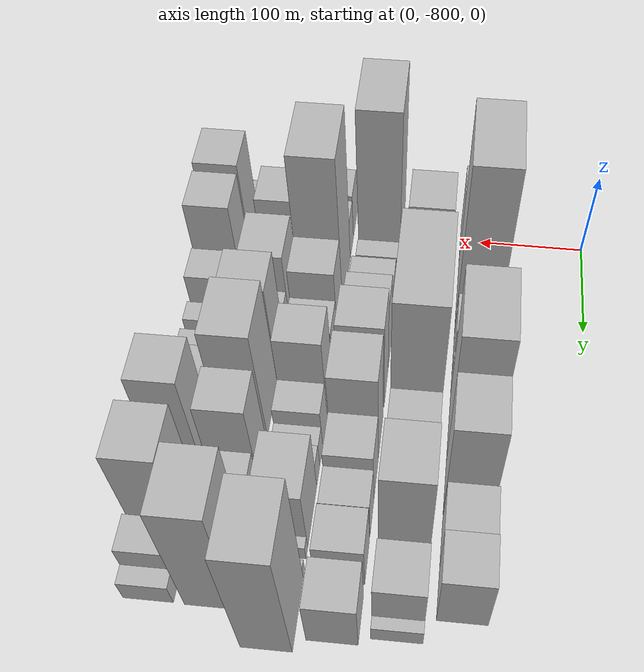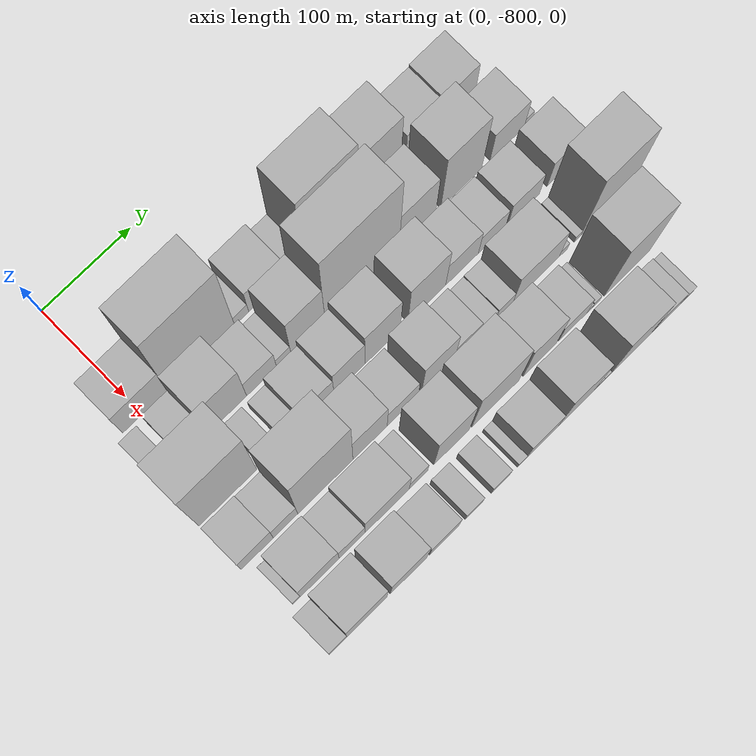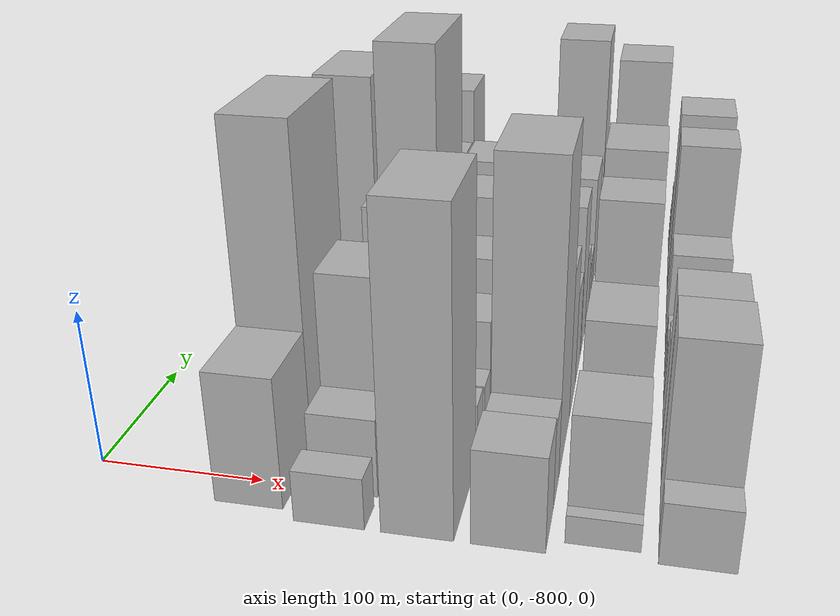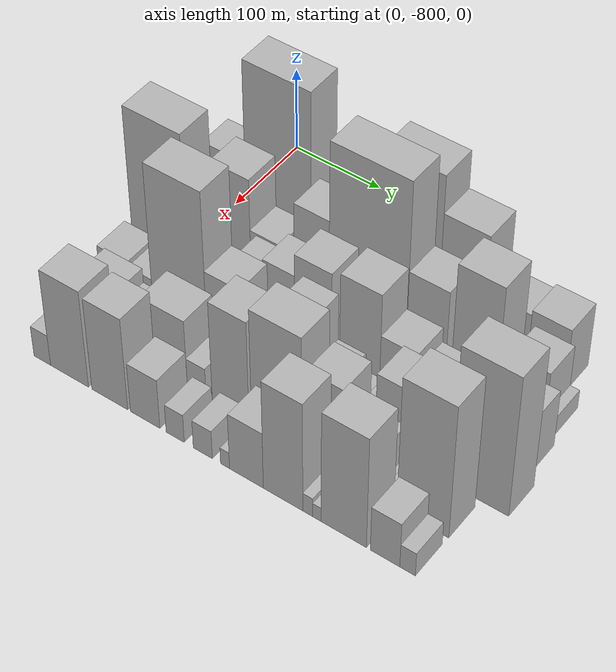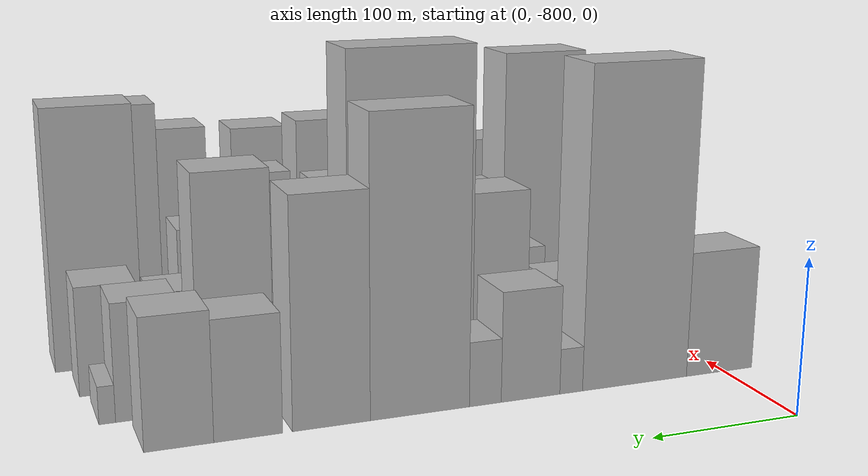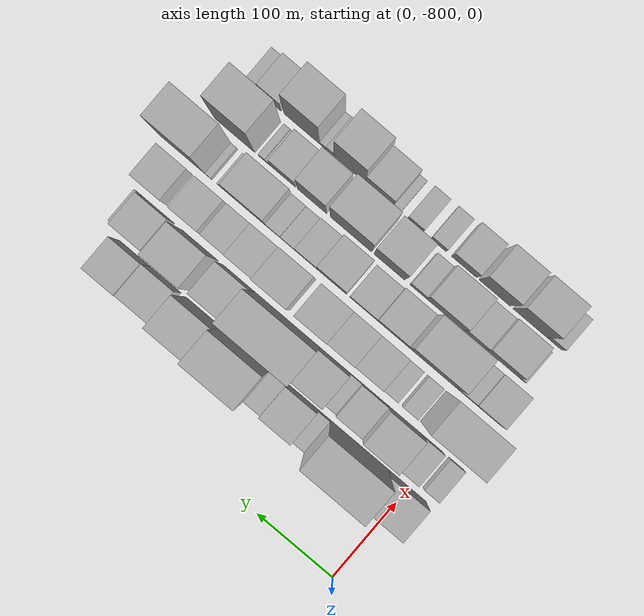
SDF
<sdf version="1.6">
 <world name="default">
  <model name="building_1">
   <static>1</static>
   <pose>100.0000 -796.8859 0 0.000000 0.000000 0.000000</pose>
   <link name="link">
    <pose>0 0 42.00 0 0 0</pose>
    <collision name="collision"><geometry><box><size>40.0000 50.2283 84.0000</size></box></geometry></collision>
    <visual name="visual">
     <cast_shadows>0</cast_shadows>
     <geometry><box><size>40.0000 50.2283 84.0000</size></box></geometry>
     <material>
      <script>
       <uri>model://HANNAS_wall/materials/scripts</uri>
       <uri>model://HANNAS_wall/materials/textures</uri>
       <name>vrc/HANNAS_wall</name>
      </script>
     </material>
    </visual>
   </link>
  </model>
  <model name="building_2">
   <static>1</static>
   <pose>100.0000 -733.5840 0 0.000000 0.000000 0.000000</pose>
   <link name="link">
    <pose>0 0 105.00 0 0 0</pose>
    <collision name="collision"><geometry><box><size>40.0000 76.3755 210.0000</size></box></geometry></collision>
    <visual name="visual">
     <cast_shadows>0</cast_shadows>
     <geometry><box><size>40.0000 76.3755 210.0000</size></box></geometry>
     <material>
      <script>
       <uri>model://HANNAS_wall/materials/scripts</uri>
       <uri>model://HANNAS_wall/materials/textures</uri>
       <name>vrc/HANNAS_wall</name>
      </script>
     </material>
    </visual>
   </link>
  </model>
  <model name="building_3">
   <static>1</static>
   <pose>100.0000 -687.3342 0 0.000000 0.000000 0.000000</pose>
   <link name="link">
    <pose>0 0 15.00 0 0 0</pose>
    <collision name="collision"><geometry><box><size>40.0000 16.1241 30.0000</size></box></geometry></collision>
    <visual name="visual">
     <cast_shadows>0</cast_shadows>
     <geometry><box><size>40.0000 16.1241 30.0000</size></box></geometry>
     <material>
      <script>
       <uri>model://HANNAS_wall/materials/scripts</uri>
       <uri>model://HANNAS_wall/materials/textures</uri>
       <name>vrc/HANNAS_wall</name>
      </script>
     </material>
    </visual>
   </link>
  </model>
  <model name="building_4">
   <static>1</static>
   <pose>100.0000 -658.9254 0 0.000000 0.000000 0.000000</pose>
   <link name="link">
    <pose>0 0 36.00 0 0 0</pose>
    <collision name="collision"><geometry><box><size>40.0000 40.6934 72.0000</size></box></geometry></collision>
    <visual name="visual">
     <cast_shadows>0</cast_shadows>
     <geometry><box><size>40.0000 40.6934 72.0000</size></box></geometry>
     <material>
      <script>
       <uri>model://HANNAS_wall/materials/scripts</uri>
       <uri>model://HANNAS_wall/materials/textures</uri>
       <name>vrc/HANNAS_wall</name>
      </script>
     </material>
    </visual>
   </link>
  </model>
  <model name="building_5">
   <static>1</static>
   <pose>100.0000 -627.7885 0 0.000000 0.000000 0.000000</pose>
   <link name="link">
    <pose>0 0 21.00 0 0 0</pose>
    <collision name="collision"><geometry><box><size>40.0000 21.5804 42.0000</size></box></geometry></collision>
    <visual name="visual">
     <cast_shadows>0</cast_shadows>
     <geometry><box><size>40.0000 21.5804 42.0000</size></box></geometry>
     <material>
      <script>
       <uri>model://HANNAS_wall/materials/scripts</uri>
       <uri>model://HANNAS_wall/materials/textures</uri>
       <name>vrc/HANNAS_wall</name>
      </script>
     </material>
    </visual>
   </link>
  </model>
  <model name="building_6">
   <static>1</static>
   <pose>100.0000 -584.6158 0 0.000000 0.000000 0.000000</pose>
   <link name="link">
    <pose>0 0 94.50 0 0 0</pose>
    <collision name="collision"><geometry><box><size>40.0000 64.7650 189.0000</size></box></geometry></collision>
    <visual name="visual">
     <cast_shadows>0</cast_shadows>
     <geometry><box><size>40.0000 64.7650 189.0000</size></box></geometry>
     <material>
      <script>
       <uri>model://HANNAS_wall/materials/scripts</uri>
       <uri>model://HANNAS_wall/materials/textures</uri>
       <name>vrc/HANNAS_wall</name>
      </script>
     </material>
    </visual>
   </link>
  </model>
  <model name="building_7">
   <static>1</static>
   <pose>100.0000 -527.9180 0 0.000000 0.000000 0.000000</pose>
   <link name="link">
    <pose>0 0 72.00 0 0 0</pose>
    <collision name="collision"><geometry><box><size>40.0000 48.6304 144.0000</size></box></geometry></collision>
    <visual name="visual">
     <cast_shadows>0</cast_shadows>
     <geometry><box><size>40.0000 48.6304 144.0000</size></box></geometry>
     <material>
      <script>
       <uri>model://HANNAS_wall/materials/scripts</uri>
       <uri>model://HANNAS_wall/materials/textures</uri>
       <name>vrc/HANNAS_wall</name>
      </script>
     </material>
    </visual>
   </link>
  </model>
  <model name="building_8">
   <static>1</static>
   <pose>100.0000 -476.9769 0 0.000000 0.000000 0.000000</pose>
   <link name="link">
    <pose>0 0 37.50 0 0 0</pose>
    <collision name="collision"><geometry><box><size>40.0000 41.2519 75.0000</size></box></geometry></collision>
    <visual name="visual">
     <cast_shadows>0</cast_shadows>
     <geometry><box><size>40.0000 41.2519 75.0000</size></box></geometry>
     <material>
      <script>
       <uri>model://HANNAS_wall/materials/scripts</uri>
       <uri>model://HANNAS_wall/materials/textures</uri>
       <name>vrc/HANNAS_wall</name>
      </script>
     </material>
    </visual>
   </link>
  </model>
  <model name="building_9">
   <static>1</static>
   <pose>100.0000 -436.0527 0 0.000000 0.000000 0.000000</pose>
   <link name="link">
    <pose>0 0 40.50 0 0 0</pose>
    <collision name="collision"><geometry><box><size>40.0000 40.5966 81.0000</size></box></geometry></collision>
    <visual name="visual">
     <cast_shadows>0</cast_shadows>
     <geometry><box><size>40.0000 40.5966 81.0000</size></box></geometry>
     <material>
      <script>
       <uri>model://HANNAS_wall/materials/scripts</uri>
       <uri>model://HANNAS_wall/materials/textures</uri>
       <name>vrc/HANNAS_wall</name>
      </script>
     </material>
    </visual>
   </link>
  </model>
  <model name="building_44">
   <static>1</static>
   <pose>149.0000 -820.1243 0 0.000000 0.000000 0.000000</pose>
   <link name="link">
    <pose>0 0 16.50 0 0 0</pose>
    <collision name="collision"><geometry><box><size>40.0000 19.7513 33.0000</size></box></geometry></collision>
    <visual name="visual">
     <cast_shadows>0</cast_shadows>
     <geometry><box><size>40.0000 19.7513 33.0000</size></box></geometry>
     <material>
      <script>
       <uri>model://HANNAS_wall/materials/scripts</uri>
       <uri>model://HANNAS_wall/materials/textures</uri>
       <name>vrc/HANNAS_wall</name>
      </script>
     </material>
    </visual>
   </link>
  </model>
  <model name="building_45">
   <static>1</static>
   <pose>149.0000 -787.9828 0 0.000000 0.000000 0.000000</pose>
   <link name="link">
    <pose>0 0 25.50 0 0 0</pose>
    <collision name="collision"><geometry><box><size>40.0000 28.5318 51.0000</size></box></geometry></collision>
    <visual name="visual">
     <cast_shadows>0</cast_shadows>
     <geometry><box><size>40.0000 28.5318 51.0000</size></box></geometry>
     <material>
      <script>
       <uri>model://HANNAS_wall/materials/scripts</uri>
       <uri>model://HANNAS_wall/materials/textures</uri>
       <name>vrc/HANNAS_wall</name>
      </script>
     </material>
    </visual>
   </link>
  </model>
  <model name="building_46">
   <static>1</static>
   <pose>149.0000 -751.4197 0 0.000000 0.000000 0.000000</pose>
   <link name="link">
    <pose>0 0 61.50 0 0 0</pose>
    <collision name="collision"><geometry><box><size>40.0000 44.5943 123.0000</size></box></geometry></collision>
    <visual name="visual">
     <cast_shadows>0</cast_shadows>
     <geometry><box><size>40.0000 44.5943 123.0000</size></box></geometry>
     <material>
      <script>
       <uri>model://HANNAS_wall/materials/scripts</uri>
       <uri>model://HANNAS_wall/materials/textures</uri>
       <name>vrc/HANNAS_wall</name>
      </script>
     </material>
    </visual>
   </link>
  </model>
  <model name="building_47">
   <static>1</static>
   <pose>149.0000 -712.1330 0 0.000000 0.000000 0.000000</pose>
   <link name="link">
    <pose>0 0 30.00 0 0 0</pose>
    <collision name="collision"><geometry><box><size>40.0000 33.9791 60.0000</size></box></geometry></collision>
    <visual name="visual">
     <cast_shadows>0</cast_shadows>
     <geometry><box><size>40.0000 33.9791 60.0000</size></box></geometry>
     <material>
      <script>
       <uri>model://HANNAS_wall/materials/scripts</uri>
       <uri>model://HANNAS_wall/materials/textures</uri>
       <name>vrc/HANNAS_wall</name>
      </script>
     </material>
    </visual>
   </link>
  </model>
  <model name="building_48">
   <static>1</static>
   <pose>149.0000 -686.9816 0 0.000000 0.000000 0.000000</pose>
   <link name="link">
    <pose>0 0 15.00 0 0 0</pose>
    <collision name="collision"><geometry><box><size>40.0000 16.3236 30.0000</size></box></geometry></collision>
    <visual name="visual">
     <cast_shadows>0</cast_shadows>
     <geometry><box><size>40.0000 16.3236 30.0000</size></box></geometry>
     <material>
      <script>
       <uri>model://HANNAS_wall/materials/scripts</uri>
       <uri>model://HANNAS_wall/materials/textures</uri>
       <name>vrc/HANNAS_wall</name>
      </script>
     </material>
    </visual>
   </link>
  </model>
  <model name="building_49">
   <static>1</static>
   <pose>149.0000 -659.2333 0 0.000000 0.000000 0.000000</pose>
   <link name="link">
    <pose>0 0 61.50 0 0 0</pose>
    <collision name="collision"><geometry><box><size>40.0000 39.1730 123.0000</size></box></geometry></collision>
    <visual name="visual">
     <cast_shadows>0</cast_shadows>
     <geometry><box><size>40.0000 39.1730 123.0000</size></box></geometry>
     <material>
      <script>
       <uri>model://HANNAS_wall/materials/scripts</uri>
       <uri>model://HANNAS_wall/materials/textures</uri>
       <name>vrc/HANNAS_wall</name>
      </script>
     </material>
    </visual>
   </link>
  </model>
  <model name="building_50">
   <static>1</static>
   <pose>149.0000 -596.8419 0 0.000000 0.000000 0.000000</pose>
   <link name="link">
    <pose>0 0 109.50 0 0 0</pose>
    <collision name="collision"><geometry><box><size>40.0000 85.6097 219.0000</size></box></geometry></collision>
    <visual name="visual">
     <cast_shadows>0</cast_shadows>
     <geometry><box><size>40.0000 85.6097 219.0000</size></box></geometry>
     <material>
      <script>
       <uri>model://HANNAS_wall/materials/scripts</uri>
       <uri>model://HANNAS_wall/materials/textures</uri>
       <name>vrc/HANNAS_wall</name>
      </script>
     </material>
    </visual>
   </link>
  </model>
  <model name="building_51">
   <static>1</static>
   <pose>149.0000 -532.7082 0 0.000000 0.000000 0.000000</pose>
   <link name="link">
    <pose>0 0 55.50 0 0 0</pose>
    <collision name="collision"><geometry><box><size>40.0000 42.6578 111.0000</size></box></geometry></collision>
    <visual name="visual">
     <cast_shadows>0</cast_shadows>
     <geometry><box><size>40.0000 42.6578 111.0000</size></box></geometry>
     <material>
      <script>
       <uri>model://HANNAS_wall/materials/scripts</uri>
       <uri>model://HANNAS_wall/materials/textures</uri>
       <name>vrc/HANNAS_wall</name>
      </script>
     </material>
    </visual>
   </link>
  </model>
  <model name="building_52">
   <static>1</static>
   <pose>149.0000 -481.3492 0 0.000000 0.000000 0.000000</pose>
   <link name="link">
    <pose>0 0 75.00 0 0 0</pose>
    <collision name="collision"><geometry><box><size>40.0000 48.0601 150.0000</size></box></geometry></collision>
    <visual name="visual">
     <cast_shadows>0</cast_shadows>
     <geometry><box><size>40.0000 48.0601 150.0000</size></box></geometry>
     <material>
      <script>
       <uri>model://HANNAS_wall/materials/scripts</uri>
       <uri>model://HANNAS_wall/materials/textures</uri>
       <name>vrc/HANNAS_wall</name>
      </script>
     </material>
    </visual>
   </link>
  </model>
  <model name="building_53">
   <static>1</static>
   <pose>149.0000 -427.0822 0 0.000000 0.000000 0.000000</pose>
   <link name="link">
    <pose>0 0 37.50 0 0 0</pose>
    <collision name="collision"><geometry><box><size>40.0000 40.4738 75.0000</size></box></geometry></collision>
    <visual name="visual">
     <cast_shadows>0</cast_shadows>
     <geometry><box><size>40.0000 40.4738 75.0000</size></box></geometry>
     <material>
      <script>
       <uri>model://HANNAS_wall/materials/scripts</uri>
       <uri>model://HANNAS_wall/materials/textures</uri>
       <name>vrc/HANNAS_wall</name>
      </script>
     </material>
    </visual>
   </link>
  </model>
  <model name="building_54">
   <static>1</static>
   <pose>149.0000 -401.8744 0 0.000000 0.000000 0.000000</pose>
   <link name="link">
    <pose>0 0 12.00 0 0 0</pose>
    <collision name="collision"><geometry><box><size>40.0000 9.9417 24.0000</size></box></geometry></collision>
    <visual name="visual">
     <cast_shadows>0</cast_shadows>
     <geometry><box><size>40.0000 9.9417 24.0000</size></box></geometry>
     <material>
      <script>
       <uri>model://HANNAS_wall/materials/scripts</uri>
       <uri>model://HANNAS_wall/materials/textures</uri>
       <name>vrc/HANNAS_wall</name>
      </script>
     </material>
    </visual>
   </link>
  </model>
  <model name="building_88">
   <static>1</static>
   <pose>198.0000 -797.5485 0 0.000000 0.000000 0.000000</pose>
   <link name="link">
    <pose>0 0 97.50 0 0 0</pose>
    <collision name="collision"><geometry><box><size>40.0000 64.9030 195.0000</size></box></geometry></collision>
    <visual name="visual">
     <cast_shadows>0</cast_shadows>
     <geometry><box><size>40.0000 64.9030 195.0000</size></box></geometry>
     <material>
      <script>
       <uri>model://HANNAS_wall/materials/scripts</uri>
       <uri>model://HANNAS_wall/materials/textures</uri>
       <name>vrc/HANNAS_wall</name>
      </script>
     </material>
    </visual>
   </link>
  </model>
  <model name="building_89">
   <static>1</static>
   <pose>198.0000 -750.2233 0 0.000000 0.000000 0.000000</pose>
   <link name="link">
    <pose>0 0 19.50 0 0 0</pose>
    <collision name="collision"><geometry><box><size>40.0000 19.7476 39.0000</size></box></geometry></collision>
    <visual name="visual">
     <cast_shadows>0</cast_shadows>
     <geometry><box><size>40.0000 19.7476 39.0000</size></box></geometry>
     <material>
      <script>
       <uri>model://HANNAS_wall/materials/scripts</uri>
       <uri>model://HANNAS_wall/materials/textures</uri>
       <name>vrc/HANNAS_wall</name>
      </script>
     </material>
    </visual>
   </link>
  </model>
  <model name="building_90">
   <static>1</static>
   <pose>198.0000 -724.4360 0 0.000000 0.000000 0.000000</pose>
   <link name="link">
    <pose>0 0 18.00 0 0 0</pose>
    <collision name="collision"><geometry><box><size>40.0000 19.8270 36.0000</size></box></geometry></collision>
    <visual name="visual">
     <cast_shadows>0</cast_shadows>
     <geometry><box><size>40.0000 19.8270 36.0000</size></box></geometry>
     <material>
      <script>
       <uri>model://HANNAS_wall/materials/scripts</uri>
       <uri>model://HANNAS_wall/materials/textures</uri>
       <name>vrc/HANNAS_wall</name>
      </script>
     </material>
    </visual>
   </link>
  </model>
  <model name="building_91">
   <static>1</static>
   <pose>198.0000 -696.0371 0 0.000000 0.000000 0.000000</pose>
   <link name="link">
    <pose>0 0 34.50 0 0 0</pose>
    <collision name="collision"><geometry><box><size>40.0000 36.9707 69.0000</size></box></geometry></collision>
    <visual name="visual">
     <cast_shadows>0</cast_shadows>
     <geometry><box><size>40.0000 36.9707 69.0000</size></box></geometry>
     <material>
      <script>
       <uri>model://HANNAS_wall/materials/scripts</uri>
       <uri>model://HANNAS_wall/materials/textures</uri>
       <name>vrc/HANNAS_wall</name>
      </script>
     </material>
    </visual>
   </link>
  </model>
  <model name="building_92">
   <static>1</static>
   <pose>198.0000 -659.9001 0 0.000000 0.000000 0.000000</pose>
   <link name="link">
    <pose>0 0 46.50 0 0 0</pose>
    <collision name="collision"><geometry><box><size>40.0000 35.3034 93.0000</size></box></geometry></collision>
    <visual name="visual">
     <cast_shadows>0</cast_shadows>
     <geometry><box><size>40.0000 35.3034 93.0000</size></box></geometry>
     <material>
      <script>
       <uri>model://HANNAS_wall/materials/scripts</uri>
       <uri>model://HANNAS_wall/materials/textures</uri>
       <name>vrc/HANNAS_wall</name>
      </script>
     </material>
    </visual>
   </link>
  </model>
  <model name="building_93">
   <static>1</static>
   <pose>198.0000 -621.8851 0 0.000000 0.000000 0.000000</pose>
   <link name="link">
    <pose>0 0 60.00 0 0 0</pose>
    <collision name="collision"><geometry><box><size>40.0000 40.7267 120.0000</size></box></geometry></collision>
    <visual name="visual">
     <cast_shadows>0</cast_shadows>
     <geometry><box><size>40.0000 40.7267 120.0000</size></box></geometry>
     <material>
      <script>
       <uri>model://HANNAS_wall/materials/scripts</uri>
       <uri>model://HANNAS_wall/materials/textures</uri>
       <name>vrc/HANNAS_wall</name>
      </script>
     </material>
    </visual>
   </link>
  </model>
  <model name="building_94">
   <static>1</static>
   <pose>198.0000 -570.7113 0 0.000000 0.000000 0.000000</pose>
   <link name="link">
    <pose>0 0 63.00 0 0 0</pose>
    <collision name="collision"><geometry><box><size>40.0000 43.6209 126.0000</size></box></geometry></collision>
    <visual name="visual">
     <cast_shadows>0</cast_shadows>
     <geometry><box><size>40.0000 43.6209 126.0000</size></box></geometry>
     <material>
      <script>
       <uri>model://HANNAS_wall/materials/scripts</uri>
       <uri>model://HANNAS_wall/materials/textures</uri>
       <name>vrc/HANNAS_wall</name>
      </script>
     </material>
    </visual>
   </link>
  </model>
  <model name="building_95">
   <static>1</static>
   <pose>198.0000 -529.7526 0 0.000000 0.000000 0.000000</pose>
   <link name="link">
    <pose>0 0 37.50 0 0 0</pose>
    <collision name="collision"><geometry><box><size>40.0000 38.2964 75.0000</size></box></geometry></collision>
    <visual name="visual">
     <cast_shadows>0</cast_shadows>
     <geometry><box><size>40.0000 38.2964 75.0000</size></box></geometry>
     <material>
      <script>
       <uri>model://HANNAS_wall/materials/scripts</uri>
       <uri>model://HANNAS_wall/materials/textures</uri>
       <name>vrc/HANNAS_wall</name>
      </script>
     </material>
    </visual>
   </link>
  </model>
  <model name="building_96">
   <static>1</static>
   <pose>198.0000 -494.6274 0 0.000000 0.000000 0.000000</pose>
   <link name="link">
    <pose>0 0 28.50 0 0 0</pose>
    <collision name="collision"><geometry><box><size>40.0000 31.9541 57.0000</size></box></geometry></collision>
    <visual name="visual">
     <cast_shadows>0</cast_shadows>
     <geometry><box><size>40.0000 31.9541 57.0000</size></box></geometry>
     <material>
      <script>
       <uri>model://HANNAS_wall/materials/scripts</uri>
       <uri>model://HANNAS_wall/materials/textures</uri>
       <name>vrc/HANNAS_wall</name>
      </script>
     </material>
    </visual>
   </link>
  </model>
  <model name="building_97">
   <static>1</static>
   <pose>198.0000 -457.1479 0 0.000000 0.000000 0.000000</pose>
   <link name="link">
    <pose>0 0 31.50 0 0 0</pose>
    <collision name="collision"><geometry><box><size>40.0000 37.0048 63.0000</size></box></geometry></collision>
    <visual name="visual">
     <cast_shadows>0</cast_shadows>
     <geometry><box><size>40.0000 37.0048 63.0000</size></box></geometry>
     <material>
      <script>
       <uri>model://HANNAS_wall/materials/scripts</uri>
       <uri>model://HANNAS_wall/materials/textures</uri>
       <name>vrc/HANNAS_wall</name>
      </script>
     </material>
    </visual>
   </link>
  </model>
  <model name="building_98">
   <static>1</static>
   <pose>198.0000 -410.3999 0 0.000000 0.000000 0.000000</pose>
   <link name="link">
    <pose>0 0 36.00 0 0 0</pose>
    <collision name="collision"><geometry><box><size>40.0000 38.4912 72.0000</size></box></geometry></collision>
    <visual name="visual">
     <cast_shadows>0</cast_shadows>
     <geometry><box><size>40.0000 38.4912 72.0000</size></box></geometry>
     <material>
      <script>
       <uri>model://HANNAS_wall/materials/scripts</uri>
       <uri>model://HANNAS_wall/materials/textures</uri>
       <name>vrc/HANNAS_wall</name>
      </script>
     </material>
    </visual>
   </link>
  </model>
  <model name="building_132">
   <static>1</static>
   <pose>247.0000 -812.0141 0 0.000000 0.000000 0.000000</pose>
   <link name="link">
    <pose>0 0 30.00 0 0 0</pose>
    <collision name="collision"><geometry><box><size>40.0000 35.9718 60.0000</size></box></geometry></collision>
    <visual name="visual">
     <cast_shadows>0</cast_shadows>
     <geometry><box><size>40.0000 35.9718 60.0000</size></box></geometry>
     <material>
      <script>
       <uri>model://HANNAS_wall/materials/scripts</uri>
       <uri>model://HANNAS_wall/materials/textures</uri>
       <name>vrc/HANNAS_wall</name>
      </script>
     </material>
    </visual>
   </link>
  </model>
  <model name="building_133">
   <static>1</static>
   <pose>247.0000 -780.3311 0 0.000000 0.000000 0.000000</pose>
   <link name="link">
    <pose>0 0 27.00 0 0 0</pose>
    <collision name="collision"><geometry><box><size>40.0000 27.3943 54.0000</size></box></geometry></collision>
    <visual name="visual">
     <cast_shadows>0</cast_shadows>
     <geometry><box><size>40.0000 27.3943 54.0000</size></box></geometry>
     <material>
      <script>
       <uri>model://HANNAS_wall/materials/scripts</uri>
       <uri>model://HANNAS_wall/materials/textures</uri>
       <name>vrc/HANNAS_wall</name>
      </script>
     </material>
    </visual>
   </link>
  </model>
  <model name="building_134">
   <static>1</static>
   <pose>247.0000 -735.4342 0 0.000000 0.000000 0.000000</pose>
   <link name="link">
    <pose>0 0 99.00 0 0 0</pose>
    <collision name="collision"><geometry><box><size>40.0000 62.3995 198.0000</size></box></geometry></collision>
    <visual name="visual">
     <cast_shadows>0</cast_shadows>
     <geometry><box><size>40.0000 62.3995 198.0000</size></box></geometry>
     <material>
      <script>
       <uri>model://HANNAS_wall/materials/scripts</uri>
       <uri>model://HANNAS_wall/materials/textures</uri>
       <name>vrc/HANNAS_wall</name>
      </script>
     </material>
    </visual>
   </link>
  </model>
  <model name="building_135">
   <static>1</static>
   <pose>247.0000 -684.7155 0 0.000000 0.000000 0.000000</pose>
   <link name="link">
    <pose>0 0 51.00 0 0 0</pose>
    <collision name="collision"><geometry><box><size>40.0000 39.0378 102.0000</size></box></geometry></collision>
    <visual name="visual">
     <cast_shadows>0</cast_shadows>
     <geometry><box><size>40.0000 39.0378 102.0000</size></box></geometry>
     <material>
      <script>
       <uri>model://HANNAS_wall/materials/scripts</uri>
       <uri>model://HANNAS_wall/materials/textures</uri>
       <name>vrc/HANNAS_wall</name>
      </script>
     </material>
    </visual>
   </link>
  </model>
  <model name="building_136">
   <static>1</static>
   <pose>247.0000 -647.4212 0 0.000000 0.000000 0.000000</pose>
   <link name="link">
    <pose>0 0 33.00 0 0 0</pose>
    <collision name="collision"><geometry><box><size>40.0000 35.5508 66.0000</size></box></geometry></collision>
    <visual name="visual">
     <cast_shadows>0</cast_shadows>
     <geometry><box><size>40.0000 35.5508 66.0000</size></box></geometry>
     <material>
      <script>
       <uri>model://HANNAS_wall/materials/scripts</uri>
       <uri>model://HANNAS_wall/materials/textures</uri>
       <name>vrc/HANNAS_wall</name>
      </script>
     </material>
    </visual>
   </link>
  </model>
  <model name="building_137">
   <static>1</static>
   <pose>247.0000 -606.7516 0 0.000000 0.000000 0.000000</pose>
   <link name="link">
    <pose>0 0 55.50 0 0 0</pose>
    <collision name="collision"><geometry><box><size>40.0000 37.7882 111.0000</size></box></geometry></collision>
    <visual name="visual">
     <cast_shadows>0</cast_shadows>
     <geometry><box><size>40.0000 37.7882 111.0000</size></box></geometry>
     <material>
      <script>
       <uri>model://HANNAS_wall/materials/scripts</uri>
       <uri>model://HANNAS_wall/materials/textures</uri>
       <name>vrc/HANNAS_wall</name>
      </script>
     </material>
    </visual>
   </link>
  </model>
  <model name="building_138">
   <static>1</static>
   <pose>247.0000 -572.9656 0 0.000000 0.000000 0.000000</pose>
   <link name="link">
    <pose>0 0 27.00 0 0 0</pose>
    <collision name="collision"><geometry><box><size>40.0000 29.7838 54.0000</size></box></geometry></collision>
    <visual name="visual">
     <cast_shadows>0</cast_shadows>
     <geometry><box><size>40.0000 29.7838 54.0000</size></box></geometry>
     <material>
      <script>
       <uri>model://HANNAS_wall/materials/scripts</uri>
       <uri>model://HANNAS_wall/materials/textures</uri>
       <name>vrc/HANNAS_wall</name>
      </script>
     </material>
    </visual>
   </link>
  </model>
  <model name="building_139">
   <static>1</static>
   <pose>247.0000 -548.4549 0 0.000000 0.000000 0.000000</pose>
   <link name="link">
    <pose>0 0 16.50 0 0 0</pose>
    <collision name="collision"><geometry><box><size>40.0000 19.2377 33.0000</size></box></geometry></collision>
    <visual name="visual">
     <cast_shadows>0</cast_shadows>
     <geometry><box><size>40.0000 19.2377 33.0000</size></box></geometry>
     <material>
      <script>
       <uri>model://HANNAS_wall/materials/scripts</uri>
       <uri>model://HANNAS_wall/materials/textures</uri>
       <name>vrc/HANNAS_wall</name>
      </script>
     </material>
    </visual>
   </link>
  </model>
  <model name="building_140">
   <static>1</static>
   <pose>247.0000 -529.0636 0 0.000000 0.000000 0.000000</pose>
   <link name="link">
    <pose>0 0 18.00 0 0 0</pose>
    <collision name="collision"><geometry><box><size>40.0000 19.5449 36.0000</size></box></geometry></collision>
    <visual name="visual">
     <cast_shadows>0</cast_shadows>
     <geometry><box><size>40.0000 19.5449 36.0000</size></box></geometry>
     <material>
      <script>
       <uri>model://HANNAS_wall/materials/scripts</uri>
       <uri>model://HANNAS_wall/materials/textures</uri>
       <name>vrc/HANNAS_wall</name>
      </script>
     </material>
    </visual>
   </link>
  </model>
  <model name="building_141">
   <static>1</static>
   <pose>247.0000 -492.3433 0 0.000000 0.000000 0.000000</pose>
   <link name="link">
    <pose>0 0 45.00 0 0 0</pose>
    <collision name="collision"><geometry><box><size>40.0000 53.8956 90.0000</size></box></geometry></collision>
    <visual name="visual">
     <cast_shadows>0</cast_shadows>
     <geometry><box><size>40.0000 53.8956 90.0000</size></box></geometry>
     <material>
      <script>
       <uri>model://HANNAS_wall/materials/scripts</uri>
       <uri>model://HANNAS_wall/materials/textures</uri>
       <name>vrc/HANNAS_wall</name>
      </script>
     </material>
    </visual>
   </link>
  </model>
  <model name="building_142">
   <static>1</static>
   <pose>247.0000 -460.4018 0 0.000000 0.000000 0.000000</pose>
   <link name="link">
    <pose>0 0 10.50 0 0 0</pose>
    <collision name="collision"><geometry><box><size>40.0000 9.9874 21.0000</size></box></geometry></collision>
    <visual name="visual">
     <cast_shadows>0</cast_shadows>
     <geometry><box><size>40.0000 9.9874 21.0000</size></box></geometry>
     <material>
      <script>
       <uri>model://HANNAS_wall/materials/scripts</uri>
       <uri>model://HANNAS_wall/materials/textures</uri>
       <name>vrc/HANNAS_wall</name>
      </script>
     </material>
    </visual>
   </link>
  </model>
  <model name="building_143">
   <static>1</static>
   <pose>247.0000 -443.4813 0 0.000000 0.000000 0.000000</pose>
   <link name="link">
    <pose>0 0 9.00 0 0 0</pose>
    <collision name="collision"><geometry><box><size>40.0000 7.8536 18.0000</size></box></geometry></collision>
    <visual name="visual">
     <cast_shadows>0</cast_shadows>
     <geometry><box><size>40.0000 7.8536 18.0000</size></box></geometry>
     <material>
      <script>
       <uri>model://HANNAS_wall/materials/scripts</uri>
       <uri>model://HANNAS_wall/materials/textures</uri>
       <name>vrc/HANNAS_wall</name>
      </script>
     </material>
    </visual>
   </link>
  </model>
  <model name="building_144">
   <static>1</static>
   <pose>247.0000 -410.3525 0 0.000000 0.000000 0.000000</pose>
   <link name="link">
    <pose>0 0 88.50 0 0 0</pose>
    <collision name="collision"><geometry><box><size>40.0000 58.4041 177.0000</size></box></geometry></collision>
    <visual name="visual">
     <cast_shadows>0</cast_shadows>
     <geometry><box><size>40.0000 58.4041 177.0000</size></box></geometry>
     <material>
      <script>
       <uri>model://HANNAS_wall/materials/scripts</uri>
       <uri>model://HANNAS_wall/materials/textures</uri>
       <name>vrc/HANNAS_wall</name>
      </script>
     </material>
    </visual>
   </link>
  </model>
  <model name="building_182">
   <static>1</static>
   <pose>296.0000 -815.8309 0 0.000000 0.000000 0.000000</pose>
   <link name="link">
    <pose>0 0 9.00 0 0 0</pose>
    <collision name="collision"><geometry><box><size>40.0000 8.3382 18.0000</size></box></geometry></collision>
    <visual name="visual">
     <cast_shadows>0</cast_shadows>
     <geometry><box><size>40.0000 8.3382 18.0000</size></box></geometry>
     <material>
      <script>
       <uri>model://HANNAS_wall/materials/scripts</uri>
       <uri>model://HANNAS_wall/materials/textures</uri>
       <name>vrc/HANNAS_wall</name>
      </script>
     </material>
    </visual>
   </link>
  </model>
  <model name="building_183">
   <static>1</static>
   <pose>296.0000 -789.8645 0 0.000000 0.000000 0.000000</pose>
   <link name="link">
    <pose>0 0 37.50 0 0 0</pose>
    <collision name="collision"><geometry><box><size>40.0000 43.5946 75.0000</size></box></geometry></collision>
    <visual name="visual">
     <cast_shadows>0</cast_shadows>
     <geometry><box><size>40.0000 43.5946 75.0000</size></box></geometry>
     <material>
      <script>
       <uri>model://HANNAS_wall/materials/scripts</uri>
       <uri>model://HANNAS_wall/materials/textures</uri>
       <name>vrc/HANNAS_wall</name>
      </script>
     </material>
    </visual>
   </link>
  </model>
  <model name="building_184">
   <static>1</static>
   <pose>296.0000 -753.4088 0 0.000000 0.000000 0.000000</pose>
   <link name="link">
    <pose>0 0 28.50 0 0 0</pose>
    <collision name="collision"><geometry><box><size>40.0000 29.3168 57.0000</size></box></geometry></collision>
    <visual name="visual">
     <cast_shadows>0</cast_shadows>
     <geometry><box><size>40.0000 29.3168 57.0000</size></box></geometry>
     <material>
      <script>
       <uri>model://HANNAS_wall/materials/scripts</uri>
       <uri>model://HANNAS_wall/materials/textures</uri>
       <name>vrc/HANNAS_wall</name>
      </script>
     </material>
    </visual>
   </link>
  </model>
  <model name="building_185">
   <static>1</static>
   <pose>296.0000 -713.7876 0 0.000000 0.000000 0.000000</pose>
   <link name="link">
    <pose>0 0 45.00 0 0 0</pose>
    <collision name="collision"><geometry><box><size>40.0000 49.9257 90.0000</size></box></geometry></collision>
    <visual name="visual">
     <cast_shadows>0</cast_shadows>
     <geometry><box><size>40.0000 49.9257 90.0000</size></box></geometry>
     <material>
      <script>
       <uri>model://HANNAS_wall/materials/scripts</uri>
       <uri>model://HANNAS_wall/materials/textures</uri>
       <name>vrc/HANNAS_wall</name>
      </script>
     </material>
    </visual>
   </link>
  </model>
  <model name="building_186">
   <static>1</static>
   <pose>296.0000 -678.2511 0 0.000000 0.000000 0.000000</pose>
   <link name="link">
    <pose>0 0 21.00 0 0 0</pose>
    <collision name="collision"><geometry><box><size>40.0000 21.1472 42.0000</size></box></geometry></collision>
    <visual name="visual">
     <cast_shadows>0</cast_shadows>
     <geometry><box><size>40.0000 21.1472 42.0000</size></box></geometry>
     <material>
      <script>
       <uri>model://HANNAS_wall/materials/scripts</uri>
       <uri>model://HANNAS_wall/materials/textures</uri>
       <name>vrc/HANNAS_wall</name>
      </script>
     </material>
    </visual>
   </link>
  </model>
  <model name="building_187">
   <static>1</static>
   <pose>296.0000 -640.3484 0 0.000000 0.000000 0.000000</pose>
   <link name="link">
    <pose>0 0 66.00 0 0 0</pose>
    <collision name="collision"><geometry><box><size>40.0000 40.6582 132.0000</size></box></geometry></collision>
    <visual name="visual">
     <cast_shadows>0</cast_shadows>
     <geometry><box><size>40.0000 40.6582 132.0000</size></box></geometry>
     <material>
      <script>
       <uri>model://HANNAS_wall/materials/scripts</uri>
       <uri>model://HANNAS_wall/materials/textures</uri>
       <name>vrc/HANNAS_wall</name>
      </script>
     </material>
    </visual>
   </link>
  </model>
  <model name="building_188">
   <static>1</static>
   <pose>296.0000 -589.7713 0 0.000000 0.000000 0.000000</pose>
   <link name="link">
    <pose>0 0 75.00 0 0 0</pose>
    <collision name="collision"><geometry><box><size>40.0000 54.4960 150.0000</size></box></geometry></collision>
    <visual name="visual">
     <cast_shadows>0</cast_shadows>
     <geometry><box><size>40.0000 54.4960 150.0000</size></box></geometry>
     <material>
      <script>
       <uri>model://HANNAS_wall/materials/scripts</uri>
       <uri>model://HANNAS_wall/materials/textures</uri>
       <name>vrc/HANNAS_wall</name>
      </script>
     </material>
    </visual>
   </link>
  </model>
  <model name="building_189">
   <static>1</static>
   <pose>296.0000 -538.3340 0 0.000000 0.000000 0.000000</pose>
   <link name="link">
    <pose>0 0 57.00 0 0 0</pose>
    <collision name="collision"><geometry><box><size>40.0000 38.3785 114.0000</size></box></geometry></collision>
    <visual name="visual">
     <cast_shadows>0</cast_shadows>
     <geometry><box><size>40.0000 38.3785 114.0000</size></box></geometry>
     <material>
      <script>
       <uri>model://HANNAS_wall/materials/scripts</uri>
       <uri>model://HANNAS_wall/materials/textures</uri>
       <name>vrc/HANNAS_wall</name>
      </script>
     </material>
    </visual>
   </link>
  </model>
  <model name="building_190">
   <static>1</static>
   <pose>296.0000 -499.3421 0 0.000000 0.000000 0.000000</pose>
   <link name="link">
    <pose>0 0 28.50 0 0 0</pose>
    <collision name="collision"><geometry><box><size>40.0000 33.6053 57.0000</size></box></geometry></collision>
    <visual name="visual">
     <cast_shadows>0</cast_shadows>
     <geometry><box><size>40.0000 33.6053 57.0000</size></box></geometry>
     <material>
      <script>
       <uri>model://HANNAS_wall/materials/scripts</uri>
       <uri>model://HANNAS_wall/materials/textures</uri>
       <name>vrc/HANNAS_wall</name>
      </script>
     </material>
    </visual>
   </link>
  </model>
  <model name="building_191">
   <static>1</static>
   <pose>296.0000 -479.3086 0 0.000000 0.000000 0.000000</pose>
   <link name="link">
    <pose>0 0 7.50 0 0 0</pose>
    <collision name="collision"><geometry><box><size>40.0000 6.4617 15.0000</size></box></geometry></collision>
    <visual name="visual">
     <cast_shadows>0</cast_shadows>
     <geometry><box><size>40.0000 6.4617 15.0000</size></box></geometry>
     <material>
      <script>
       <uri>model://HANNAS_wall/materials/scripts</uri>
       <uri>model://HANNAS_wall/materials/textures</uri>
       <name>vrc/HANNAS_wall</name>
      </script>
     </material>
    </visual>
   </link>
  </model>
  <model name="building_192">
   <static>1</static>
   <pose>296.0000 -471.7769 0 0.000000 0.000000 0.000000</pose>
   <link name="link">
    <pose>0 0 9.00 0 0 0</pose>
    <collision name="collision"><geometry><box><size>40.0000 8.6017 18.0000</size></box></geometry></collision>
    <visual name="visual">
     <cast_shadows>0</cast_shadows>
     <geometry><box><size>40.0000 8.6017 18.0000</size></box></geometry>
     <material>
      <script>
       <uri>model://HANNAS_wall/materials/scripts</uri>
       <uri>model://HANNAS_wall/materials/textures</uri>
       <name>vrc/HANNAS_wall</name>
      </script>
     </material>
    </visual>
   </link>
  </model>
  <model name="building_193">
   <static>1</static>
   <pose>296.0000 -435.9840 0 0.000000 0.000000 0.000000</pose>
   <link name="link">
    <pose>0 0 84.00 0 0 0</pose>
    <collision name="collision"><geometry><box><size>40.0000 52.9840 168.0000</size></box></geometry></collision>
    <visual name="visual">
     <cast_shadows>0</cast_shadows>
     <geometry><box><size>40.0000 52.9840 168.0000</size></box></geometry>
     <material>
      <script>
       <uri>model://HANNAS_wall/materials/scripts</uri>
       <uri>model://HANNAS_wall/materials/textures</uri>
       <name>vrc/HANNAS_wall</name>
      </script>
     </material>
    </visual>
   </link>
  </model>
  <model name="building_231">
   <static>1</static>
   <pose>345.0000 -817.1724 0 0.000000 0.000000 0.000000</pose>
   <link name="link">
    <pose>0 0 19.50 0 0 0</pose>
    <collision name="collision"><geometry><box><size>40.0000 19.6553 39.0000</size></box></geometry></collision>
    <visual name="visual">
     <cast_shadows>0</cast_shadows>
     <geometry><box><size>40.0000 19.6553 39.0000</size></box></geometry>
     <material>
      <script>
       <uri>model://HANNAS_wall/materials/scripts</uri>
       <uri>model://HANNAS_wall/materials/textures</uri>
       <name>vrc/HANNAS_wall</name>
      </script>
     </material>
    </visual>
   </link>
  </model>
  <model name="building_232">
   <static>1</static>
   <pose>345.0000 -785.0669 0 0.000000 0.000000 0.000000</pose>
   <link name="link">
    <pose>0 0 61.50 0 0 0</pose>
    <collision name="collision"><geometry><box><size>40.0000 44.5556 123.0000</size></box></geometry></collision>
    <visual name="visual">
     <cast_shadows>0</cast_shadows>
     <geometry><box><size>40.0000 44.5556 123.0000</size></box></geometry>
     <material>
      <script>
       <uri>model://HANNAS_wall/materials/scripts</uri>
       <uri>model://HANNAS_wall/materials/textures</uri>
       <name>vrc/HANNAS_wall</name>
      </script>
     </material>
    </visual>
   </link>
  </model>
  <model name="building_233">
   <static>1</static>
   <pose>345.0000 -738.0993 0 0.000000 0.000000 0.000000</pose>
   <link name="link">
    <pose>0 0 58.50 0 0 0</pose>
    <collision name="collision"><geometry><box><size>40.0000 41.3796 117.0000</size></box></geometry></collision>
    <visual name="visual">
     <cast_shadows>0</cast_shadows>
     <geometry><box><size>40.0000 41.3796 117.0000</size></box></geometry>
     <material>
      <script>
       <uri>model://HANNAS_wall/materials/scripts</uri>
       <uri>model://HANNAS_wall/materials/textures</uri>
       <name>vrc/HANNAS_wall</name>
      </script>
     </material>
    </visual>
   </link>
  </model>
  <model name="building_234">
   <static>1</static>
   <pose>345.0000 -697.7153 0 0.000000 0.000000 0.000000</pose>
   <link name="link">
    <pose>0 0 31.50 0 0 0</pose>
    <collision name="collision"><geometry><box><size>40.0000 33.3884 63.0000</size></box></geometry></collision>
    <visual name="visual">
     <cast_shadows>0</cast_shadows>
     <geometry><box><size>40.0000 33.3884 63.0000</size></box></geometry>
     <material>
      <script>
       <uri>model://HANNAS_wall/materials/scripts</uri>
       <uri>model://HANNAS_wall/materials/textures</uri>
       <name>vrc/HANNAS_wall</name>
      </script>
     </material>
    </visual>
   </link>
  </model>
  <model name="building_235">
   <static>1</static>
   <pose>345.0000 -663.8974 0 0.000000 0.000000 0.000000</pose>
   <link name="link">
    <pose>0 0 18.00 0 0 0</pose>
    <collision name="collision"><geometry><box><size>40.0000 20.2474 36.0000</size></box></geometry></collision>
    <visual name="visual">
     <cast_shadows>0</cast_shadows>
     <geometry><box><size>40.0000 20.2474 36.0000</size></box></geometry>
     <material>
      <script>
       <uri>model://HANNAS_wall/materials/scripts</uri>
       <uri>model://HANNAS_wall/materials/textures</uri>
       <name>vrc/HANNAS_wall</name>
      </script>
     </material>
    </visual>
   </link>
  </model>
  <model name="building_236">
   <static>1</static>
   <pose>345.0000 -633.2710 0 0.000000 0.000000 0.000000</pose>
   <link name="link">
    <pose>0 0 18.00 0 0 0</pose>
    <collision name="collision"><geometry><box><size>40.0000 21.0055 36.0000</size></box></geometry></collision>
    <visual name="visual">
     <cast_shadows>0</cast_shadows>
     <geometry><box><size>40.0000 21.0055 36.0000</size></box></geometry>
     <material>
      <script>
       <uri>model://HANNAS_wall/materials/scripts</uri>
       <uri>model://HANNAS_wall/materials/textures</uri>
       <name>vrc/HANNAS_wall</name>
      </script>
     </material>
    </visual>
   </link>
  </model>
  <model name="building_237">
   <static>1</static>
   <pose>345.0000 -608.8873 0 0.000000 0.000000 0.000000</pose>
   <link name="link">
    <pose>0 0 10.50 0 0 0</pose>
    <collision name="collision"><geometry><box><size>40.0000 9.7619 21.0000</size></box></geometry></collision>
    <visual name="visual">
     <cast_shadows>0</cast_shadows>
     <geometry><box><size>40.0000 9.7619 21.0000</size></box></geometry>
     <material>
      <script>
       <uri>model://HANNAS_wall/materials/scripts</uri>
       <uri>model://HANNAS_wall/materials/textures</uri>
       <name>vrc/HANNAS_wall</name>
      </script>
     </material>
    </visual>
   </link>
  </model>
  <model name="building_238">
   <static>1</static>
   <pose>345.0000 -585.7371 0 0.000000 0.000000 0.000000</pose>
   <link name="link">
    <pose>0 0 36.00 0 0 0</pose>
    <collision name="collision"><geometry><box><size>40.0000 36.5384 72.0000</size></box></geometry></collision>
    <visual name="visual">
     <cast_shadows>0</cast_shadows>
     <geometry><box><size>40.0000 36.5384 72.0000</size></box></geometry>
     <material>
      <script>
       <uri>model://HANNAS_wall/materials/scripts</uri>
       <uri>model://HANNAS_wall/materials/textures</uri>
       <name>vrc/HANNAS_wall</name>
      </script>
     </material>
    </visual>
   </link>
  </model>
  <model name="building_239">
   <static>1</static>
   <pose>345.0000 -546.5399 0 0.000000 0.000000 0.000000</pose>
   <link name="link">
    <pose>0 0 69.00 0 0 0</pose>
    <collision name="collision"><geometry><box><size>40.0000 41.8561 138.0000</size></box></geometry></collision>
    <visual name="visual">
     <cast_shadows>0</cast_shadows>
     <geometry><box><size>40.0000 41.8561 138.0000</size></box></geometry>
     <material>
      <script>
       <uri>model://HANNAS_wall/materials/scripts</uri>
       <uri>model://HANNAS_wall/materials/textures</uri>
       <name>vrc/HANNAS_wall</name>
      </script>
     </material>
    </visual>
   </link>
  </model>
  <model name="building_240">
   <static>1</static>
   <pose>345.0000 -520.3796 0 0.000000 0.000000 0.000000</pose>
   <link name="link">
    <pose>0 0 12.00 0 0 0</pose>
    <collision name="collision"><geometry><box><size>40.0000 10.4644 24.0000</size></box></geometry></collision>
    <visual name="visual">
     <cast_shadows>0</cast_shadows>
     <geometry><box><size>40.0000 10.4644 24.0000</size></box></geometry>
     <material>
      <script>
       <uri>model://HANNAS_wall/materials/scripts</uri>
       <uri>model://HANNAS_wall/materials/textures</uri>
       <name>vrc/HANNAS_wall</name>
      </script>
     </material>
    </visual>
   </link>
  </model>
  <model name="building_241">
   <static>1</static>
   <pose>345.0000 -510.8785 0 0.000000 0.000000 0.000000</pose>
   <link name="link">
    <pose>0 0 9.00 0 0 0</pose>
    <collision name="collision"><geometry><box><size>40.0000 8.5380 18.0000</size></box></geometry></collision>
    <visual name="visual">
     <cast_shadows>0</cast_shadows>
     <geometry><box><size>40.0000 8.5380 18.0000</size></box></geometry>
     <material>
      <script>
       <uri>model://HANNAS_wall/materials/scripts</uri>
       <uri>model://HANNAS_wall/materials/textures</uri>
       <name>vrc/HANNAS_wall</name>
      </script>
     </material>
    </visual>
   </link>
  </model>
  <model name="building_242">
   <static>1</static>
   <pose>345.0000 -483.1168 0 0.000000 0.000000 0.000000</pose>
   <link name="link">
    <pose>0 0 70.50 0 0 0</pose>
    <collision name="collision"><geometry><box><size>40.0000 46.9853 141.0000</size></box></geometry></collision>
    <visual name="visual">
     <cast_shadows>0</cast_shadows>
     <geometry><box><size>40.0000 46.9853 141.0000</size></box></geometry>
     <material>
      <script>
       <uri>model://HANNAS_wall/materials/scripts</uri>
       <uri>model://HANNAS_wall/materials/textures</uri>
       <name>vrc/HANNAS_wall</name>
      </script>
     </material>
    </visual>
   </link>
  </model>
  <model name="building_243">
   <static>1</static>
   <pose>345.0000 -440.6907 0 0.000000 0.000000 0.000000</pose>
   <link name="link">
    <pose>0 0 28.50 0 0 0</pose>
    <collision name="collision"><geometry><box><size>40.0000 29.8670 57.0000</size></box></geometry></collision>
    <visual name="visual">
     <cast_shadows>0</cast_shadows>
     <geometry><box><size>40.0000 29.8670 57.0000</size></box></geometry>
     <material>
      <script>
       <uri>model://HANNAS_wall/materials/scripts</uri>
       <uri>model://HANNAS_wall/materials/textures</uri>
       <name>vrc/HANNAS_wall</name>
      </script>
     </material>
    </visual>
   </link>
  </model>
  <model name="building_244">
   <static>1</static>
   <pose>345.0000 -417.9594 0 0.000000 0.000000 0.000000</pose>
   <link name="link">
    <pose>0 0 15.00 0 0 0</pose>
    <collision name="collision"><geometry><box><size>40.0000 15.5955 30.0000</size></box></geometry></collision>
    <visual name="visual">
     <cast_shadows>0</cast_shadows>
     <geometry><box><size>40.0000 15.5955 30.0000</size></box></geometry>
     <material>
      <script>
       <uri>model://HANNAS_wall/materials/scripts</uri>
       <uri>model://HANNAS_wall/materials/textures</uri>
       <name>vrc/HANNAS_wall</name>
      </script>
     </material>
    </visual>
   </link>
  </model>
 </world>
</sdf>
